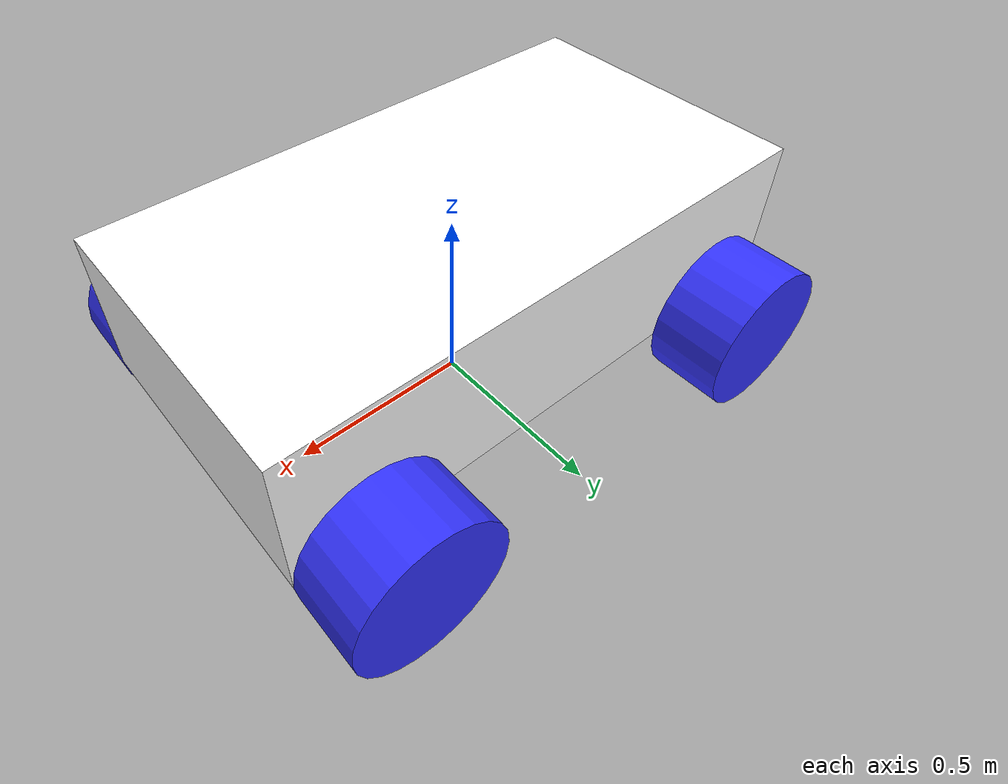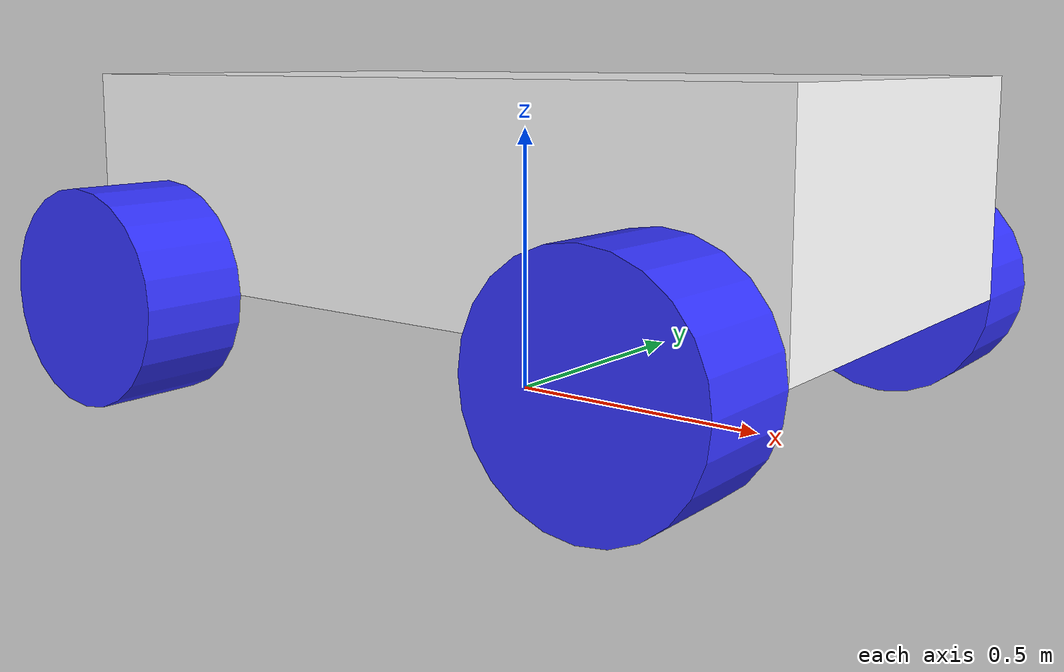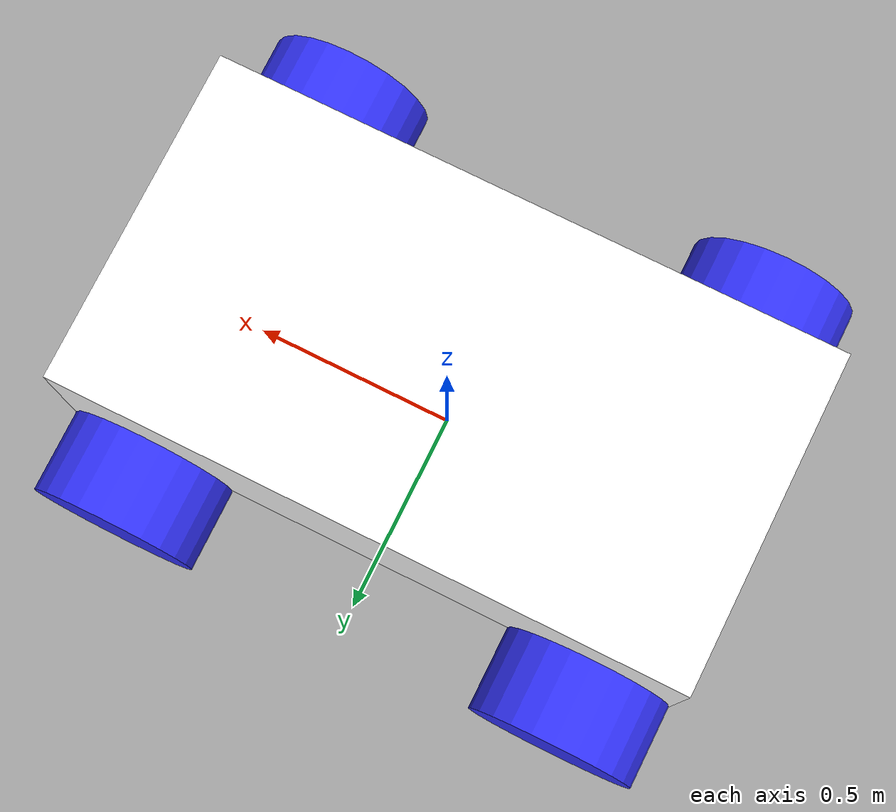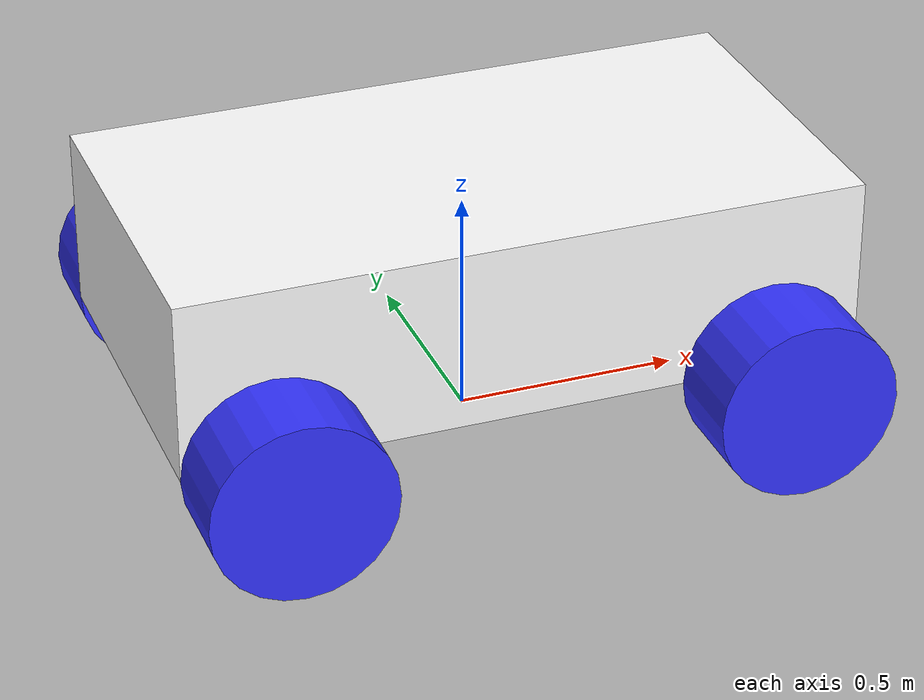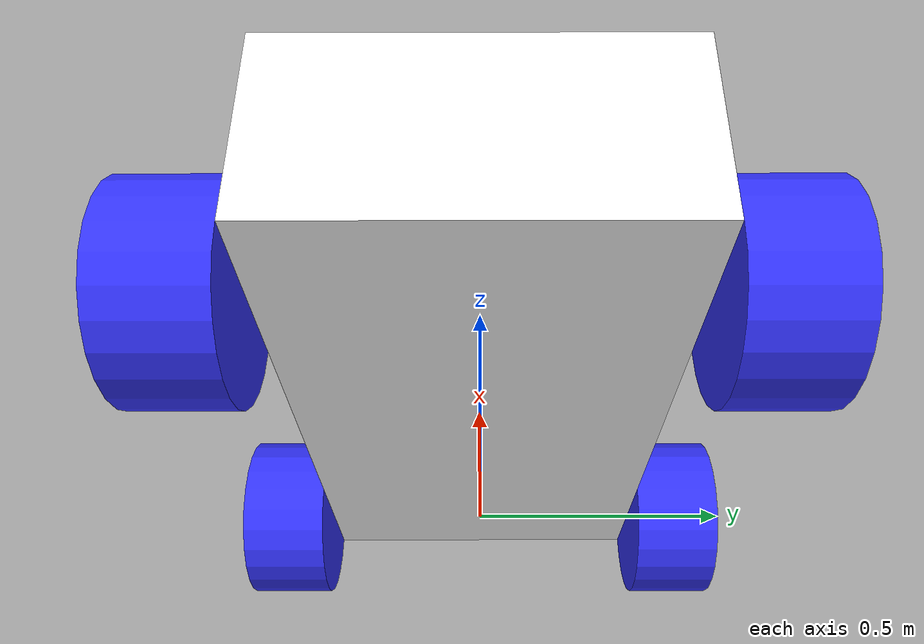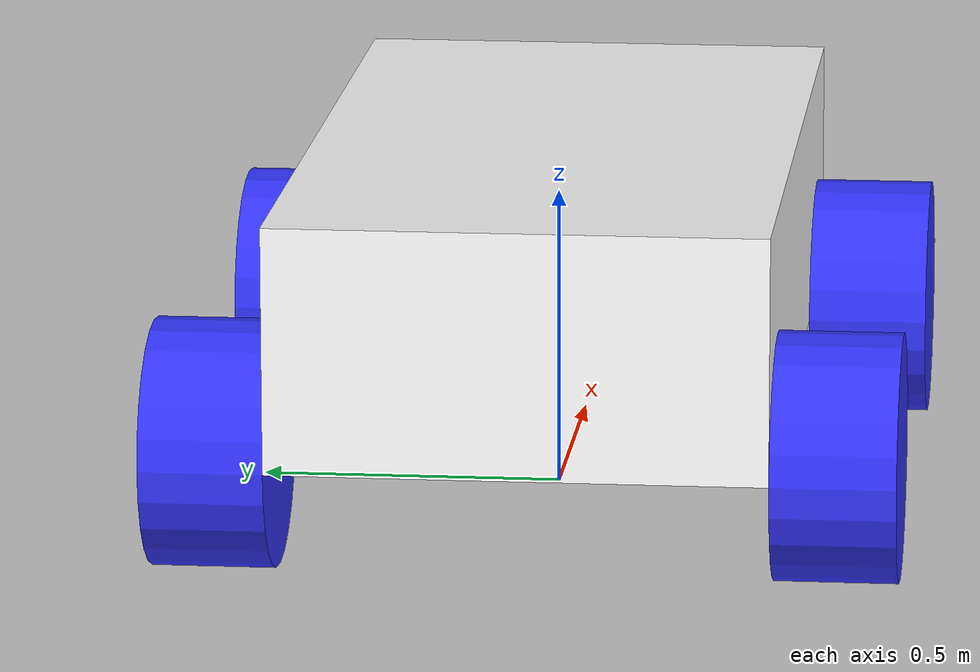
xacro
<?xml version="1.0"?>
<robot xmlns:xacro="http://www.ros.org/wiki/xacro" >

    <xacro:include filename="inertial_macros.xacro"/>

    <material name="white">
        <color rgba="1 1 1 1"/>
    </material>

     <material name="orange">
        <color rgba="1 0.3 0.1 1"/>
    </material>

     <material name="blue">
        <color rgba="0.2 0.2 1 1"/>
    </material>

     <material name="black">
        <color rgba="0 0 0 1"/>
    </material>

    <!-- BASE LINK -->
    <link name="base_link">

    </link>

    <!-- Polaczenie pudelka z base link -->
    <joint name="chassis_joint" type="fixed">
        <parent link="base_link"/>
        <child link="chassis"/>
        <origin xyz="0 0 0.2"/>
    </joint>

    <!-- Nadwozie -->
    <link name="chassis">
        <visual>
            <origin xyz="0 0 0.2"/>
            <geometry>
                <box size="1.5 0.8 0.4"/>
            </geometry>
            <material name="white"/>
        </visual>
        <collision>
            <origin xyz="0 0 0.2"/>
            <geometry>
                <box size="1.5 0.8 0.4"/>
            </geometry>
        </collision>
        <xacro:inertial_box mass="5" x="1.5" y="0.8" z="0.4">
            <origin xyz="0 0 0.2"/>
        </xacro:inertial_box>
    </link>

    <gazebo reference="chassis">
        <material>Gazebo/White</material>
    </gazebo>

    <!-- Połączenie prawe tylne koło -->
    <joint name="rear_right_wheel_joint" type="continuous">
        <parent link="base_link"/>
        <child link="rear_right_wheel"/>
        <origin xyz="-0.55 -0.5 0.2" rpy="${pi/2} 0 0"/>
        <axis xyz="0 0 -1"/>
    </joint>

    <!-- Rear_right_wheel -->
    <link name="rear_right_wheel">
        <visual>
            <geometry>
                <cylinder radius="0.2" length="0.2"/>
            </geometry>
            <material name="blue"/>
        </visual>
        <collision>
            <geometry>
                <cylinder radius="0.2" length="0.2"/>
            </geometry>
        </collision>
        <xacro:inertial_cylinder mass="1" length="0.2" radius="0.2">
            <origin xyz="0 0 0.2" rpy="0 0 0"/>
        </xacro:inertial_cylinder>
    </link>

    <gazebo reference="rear_right_wheel">
        <material>Gazebo/Blue</material>
        <mu1 value="0.5"/>
        <mu2 value="0.5"/>
    </gazebo>

    <!-- Połączenie lewe tylne koło -->
    <joint name="rear_left_wheel_joint" type="continuous">
        <parent link="base_link"/>
        <child link="rear_left_wheel"/>
        <origin xyz="-0.55 0.5 0.2" rpy="-${pi/2} 0 0"/>
        <axis xyz="0 0 1"/>
    </joint>

    <!-- Rear_left_wheel -->
    <link name="rear_left_wheel">
        <visual>
            <geometry>
                <cylinder radius="0.2" length="0.2"/>
            </geometry>
            <material name="blue"/>
        </visual>
        <collision>
            <geometry>
                <cylinder radius="0.2" length="0.2"/>
            </geometry>
        </collision>
        <xacro:inertial_cylinder mass="1" length="0.2" radius="0.2">
            <origin xyz="0 0 0.2" rpy="0 0 0"/>
        </xacro:inertial_cylinder>
    </link>

    <gazebo reference="rear_left_wheel">
        <material>Gazebo/Blue</material>
        <mu1 value="0.5"/>
        <mu2 value="0.5"/>
    </gazebo>

    <!-- Połączenie prawe przednie koło -->
    <joint name="front_right_wheel_joint" type="continuous">
        <parent link="base_link"/>
        <child link="front_right_wheel"/>
        <origin xyz="0.55 -0.5 0.2" rpy="${pi/2} 0 0"/>
        <axis xyz="0 0 -1"/>
    </joint>

    <!-- Front_right_wheel -->
    <link name="front_right_wheel">
        <visual>
            <geometry>
                <cylinder radius="0.2" length="0.2"/>
            </geometry>
            <material name="blue"/>
        </visual>
        <collision>
            <geometry>
                <cylinder radius="0.2" length="0.2"/>
            </geometry>
        </collision>
        <xacro:inertial_cylinder mass="1" length="0.2" radius="0.2">
            <origin xyz="0 0 0.2" rpy="0 0 0"/>
        </xacro:inertial_cylinder>
    </link>

    <gazebo reference="front_right_wheel">
        <material>Gazebo/Blue</material>
        <mu1 value="0.5"/>
        <mu2 value="0.5"/>
    </gazebo>

    <!-- Połączenie lewe tylne koło -->
    <joint name="front_left_wheel_joint" type="continuous">
        <parent link="base_link"/>
        <child link="front_left_wheel"/>
        <origin xyz="0.55 0.5 0.2" rpy="-${pi/2} 0 0"/>
        <axis xyz="0 0 1"/>
    </joint>

    <!-- Front_left_wheel -->
    <link name="front_left_wheel">
        <visual>
            <geometry>
                <cylinder radius="0.2" length="0.2"/>
            </geometry>
            <material name="blue"/>
        </visual>
        <collision>
            <geometry>
                <cylinder radius="0.2" length="0.2"/>
            </geometry>
        </collision>
        <xacro:inertial_cylinder mass="1" length="0.2" radius="0.2">
            <origin xyz="0 0 0.2" rpy="0 0 0"/>
        </xacro:inertial_cylinder>
    </link>

    <gazebo reference="front_left_wheel">
        <material>Gazebo/Blue</material>
        <mu1 value="0.5"/>
        <mu2 value="0.5"/>
    </gazebo>

</robot>

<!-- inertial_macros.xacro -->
<robot xmlns:xacro="http://www.ros.org/wiki/xacro" >

    <!-- Specify some standard inertial calculations https://en.wikipedia.org/wiki/List_of_moments_of_inertia -->
    <!-- These make use of xacro's mathematical functionality -->

    <xacro:macro name="inertial_sphere" params="mass radius *origin">
        <inertial>
            <xacro:insert_block name="origin"/>
            <mass value="${mass}" />
            <inertia ixx="${(2/5) * mass * (radius*radius)}" ixy="0.0" ixz="0.0"
                    iyy="${(2/5) * mass * (radius*radius)}" iyz="0.0"
                    izz="${(2/5) * mass * (radius*radius)}" />
        </inertial>
    </xacro:macro>

    <xacro:macro name="inertial_box" params="mass x y z *origin">
        <inertial>
            <xacro:insert_block name="origin"/>
            <mass value="${mass}" />
            <inertia ixx="${(1/12) * mass * (y*y+z*z)}" ixy="0.0" ixz="0.0"
                    iyy="${(1/12) * mass * (x*x+z*z)}" iyz="0.0"
                    izz="${(1/12) * mass * (x*x+y*y)}" />
        </inertial>
    </xacro:macro>

    <xacro:macro name="inertial_cylinder" params="mass length radius *origin">
        <inertial>
            <xacro:insert_block name="origin"/>
            <mass value="${mass}" />
            <inertia ixx="${(1/12) * mass * (3*radius*radius + length*length)}" ixy="0.0" ixz="0.0"
                    iyy="${(1/12) * mass * (3*radius*radius + length*length)}" iyz="0.0"
                    izz="${(1/2) * mass * (radius*radius)}" />
        </inertial>
    </xacro:macro>

</robot>
